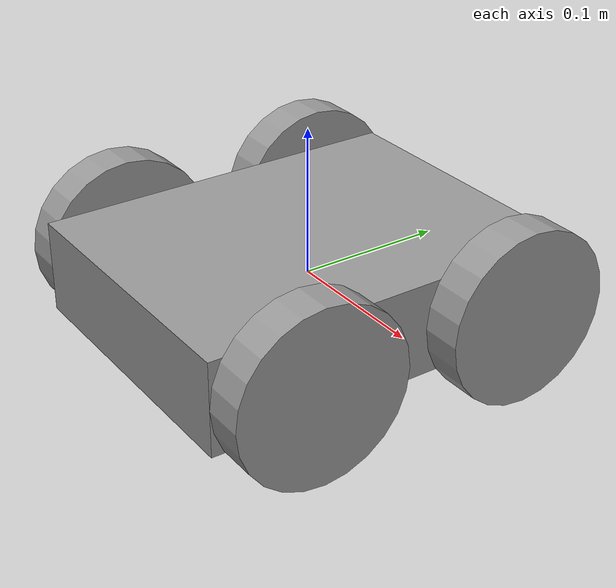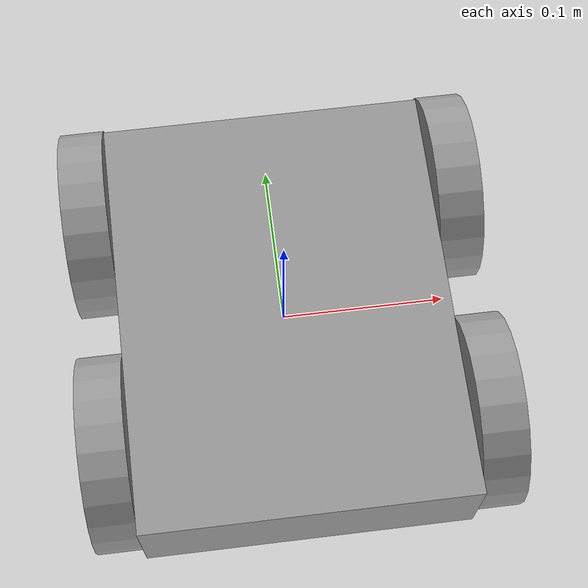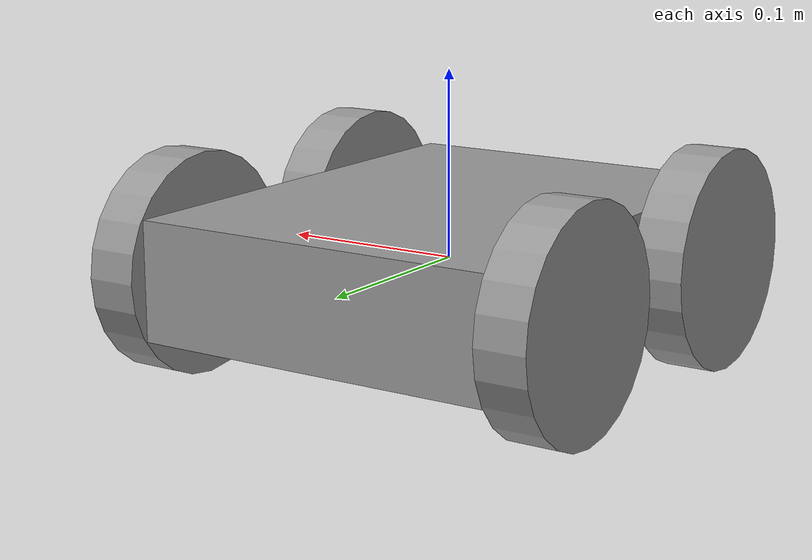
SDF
<?xml version='1.0'?>
<sdf version='1.7'>
  <model name='myrobot'>
    <link name='link_0'>
      <inertial>
        <mass>0.818395</mass>
        <inertia>
          <ixx>0.00486965</ixx>
          <ixy>0</ixy>
          <ixz>0</ixz>
          <iyy>0.00299924</iyy>
          <iyz>0</iyz>
          <izz>0.00732635</izz>
        </inertia>
        <pose>0 0 0 0 -0 0</pose>
      </inertial>
      <pose>6e-05 -0.004072 1e-06 0 -0 0</pose>
      <gravity>1</gravity>
      <self_collide>0</self_collide>
      <kinematic>0</kinematic>
      <enable_wind>0</enable_wind>
      <visual name='visual'>
        <pose>0 0 0 0 -0 0</pose>
        <geometry>
          <box>
            <size>0.2 0.259664 0.063068</size>
          </box>
        </geometry>
        <material>
          <lighting>1</lighting>
          <script>
            <uri>file://media/materials/scripts/gazebo.material</uri>
            <name>Gazebo/Grey</name>
          </script>
          <shader type='pixel'>
            <normal_map>__default__</normal_map>
          </shader>
          <ambient>0.3 0.3 0.3 1</ambient>
          <diffuse>0.7 0.7 0.7 1</diffuse>
          <specular>0.01 0.01 0.01 1</specular>
          <emissive>0 0 0 1</emissive>
        </material>
        <transparency>0</transparency>
        <cast_shadows>1</cast_shadows>
      </visual>
      <collision name='collision'>
        <laser_retro>0</laser_retro>
        <max_contacts>10</max_contacts>
        <pose>0 0 0 0 -0 0</pose>
        <geometry>
          <box>
            <size>0.2 0.259664 0.063068</size>
          </box>
        </geometry>
        <surface>
          <friction>
            <ode>
              <mu>1</mu>
              <mu2>1</mu2>
              <fdir1>0 0 0</fdir1>
              <slip1>0</slip1>
              <slip2>0</slip2>
            </ode>
            <torsional>
              <coefficient>1</coefficient>
              <patch_radius>0</patch_radius>
              <surface_radius>0</surface_radius>
              <use_patch_radius>1</use_patch_radius>
              <ode>
                <slip>0</slip>
              </ode>
            </torsional>
          </friction>
          <bounce>
            <restitution_coefficient>0</restitution_coefficient>
            <threshold>1e+06</threshold>
          </bounce>
          <contact>
            <collide_without_contact>0</collide_without_contact>
            <collide_without_contact_bitmask>1</collide_without_contact_bitmask>
            <collide_bitmask>1</collide_bitmask>
            <ode>
              <soft_cfm>0</soft_cfm>
              <soft_erp>0.2</soft_erp>
              <kp>1e+13</kp>
              <kd>1</kd>
              <max_vel>0.01</max_vel>
              <min_depth>0</min_depth>
            </ode>
            <bullet>
              <split_impulse>1</split_impulse>
              <split_impulse_penetration_threshold>-0.01</split_impulse_penetration_threshold>
              <soft_cfm>0</soft_cfm>
              <soft_erp>0.2</soft_erp>
              <kp>1e+13</kp>
              <kd>1</kd>
            </bullet>
          </contact>
        </surface>
      </collision>
    </link>
    <link name='link_3'>
      <inertial>
        <mass>0.00037985</mass>
        <inertia>
          <ixx>3.5e-07</ixx>
          <ixy>0</ixy>
          <ixz>0</ixz>
          <iyy>3.5e-07</iyy>
          <iyz>0</iyz>
          <izz>6.6e-07</izz>
        </inertia>
        <pose>0 0 0 0 -0 0</pose>
      </inertial>
      <pose>-0.113542 -0.074896 0 3.13991 -1.57079 -3.13992</pose>
      <gravity>1</gravity>
      <self_collide>0</self_collide>
      <kinematic>0</kinematic>
      <enable_wind>0</enable_wind>
      <visual name='visual'>
        <pose>0 0 0 0 -0 0</pose>
        <geometry>
          <cylinder>
            <radius>0.0590043</radius>
            <length>0.0272053</length>
          </cylinder>
        </geometry>
        <material>
          <lighting>1</lighting>
          <script>
            <uri>file://media/materials/scripts/gazebo.material</uri>
            <name>Gazebo/Grey</name>
          </script>
          <shader type='pixel'>
            <normal_map>__default__</normal_map>
          </shader>
          <ambient>0.3 0.3 0.3 1</ambient>
          <diffuse>0.7 0.7 0.7 1</diffuse>
          <specular>0.01 0.01 0.01 1</specular>
          <emissive>0 0 0 1</emissive>
        </material>
        <transparency>0</transparency>
        <cast_shadows>1</cast_shadows>
      </visual>
      <collision name='collision'>
        <laser_retro>0</laser_retro>
        <max_contacts>10</max_contacts>
        <pose>0 0 0 0 -0 0</pose>
        <geometry>
          <cylinder>
            <radius>0.059004</radius>
            <length>0.027205</length>
          </cylinder>
        </geometry>
        <surface>
          <friction>
            <ode>
              <mu>1</mu>
              <mu2>1</mu2>
              <fdir1>0 0 0</fdir1>
              <slip1>0</slip1>
              <slip2>0</slip2>
            </ode>
            <torsional>
              <coefficient>1</coefficient>
              <patch_radius>0</patch_radius>
              <surface_radius>0</surface_radius>
              <use_patch_radius>1</use_patch_radius>
              <ode>
                <slip>0</slip>
              </ode>
            </torsional>
          </friction>
          <bounce>
            <restitution_coefficient>0</restitution_coefficient>
            <threshold>1e+06</threshold>
          </bounce>
          <contact>
            <collide_without_contact>0</collide_without_contact>
            <collide_without_contact_bitmask>1</collide_without_contact_bitmask>
            <collide_bitmask>1</collide_bitmask>
            <ode>
              <soft_cfm>0</soft_cfm>
              <soft_erp>0.2</soft_erp>
              <kp>1e+13</kp>
              <kd>1</kd>
              <max_vel>0.01</max_vel>
              <min_depth>0</min_depth>
            </ode>
            <bullet>
              <split_impulse>1</split_impulse>
              <split_impulse_penetration_threshold>-0.01</split_impulse_penetration_threshold>
              <soft_cfm>0</soft_cfm>
              <soft_erp>0.2</soft_erp>
              <kp>1e+13</kp>
              <kd>1</kd>
            </bullet>
          </contact>
        </surface>
      </collision>
    </link>
    <link name='link_3_clone'>
      <inertial>
        <mass>0.00037985</mass>
        <inertia>
          <ixx>3.5e-07</ixx>
          <ixy>0</ixy>
          <ixz>0</ixz>
          <iyy>3.5e-07</iyy>
          <iyz>0</iyz>
          <izz>6.6e-07</izz>
        </inertia>
        <pose>0 0 0 0 -0 0</pose>
      </inertial>
      <pose>-0.11354 0.076928 0 3.13991 -1.57079 -3.13992</pose>
      <gravity>1</gravity>
      <self_collide>0</self_collide>
      <kinematic>0</kinematic>
      <enable_wind>0</enable_wind>
      <visual name='visual'>
        <pose>0 0 0 0 -0 0</pose>
        <geometry>
          <cylinder>
            <radius>0.0590043</radius>
            <length>0.0272053</length>
          </cylinder>
        </geometry>
        <material>
          <lighting>1</lighting>
          <script>
            <uri>file://media/materials/scripts/gazebo.material</uri>
            <name>Gazebo/Grey</name>
          </script>
          <shader type='pixel'>
            <normal_map>__default__</normal_map>
          </shader>
          <ambient>0.3 0.3 0.3 1</ambient>
          <diffuse>0.7 0.7 0.7 1</diffuse>
          <specular>0.01 0.01 0.01 1</specular>
          <emissive>0 0 0 1</emissive>
        </material>
        <transparency>0</transparency>
        <cast_shadows>1</cast_shadows>
      </visual>
      <collision name='collision'>
        <laser_retro>0</laser_retro>
        <max_contacts>10</max_contacts>
        <pose>0 0 0 0 -0 0</pose>
        <geometry>
          <cylinder>
            <radius>0.059004</radius>
            <length>0.027205</length>
          </cylinder>
        </geometry>
        <surface>
          <friction>
            <ode>
              <mu>1</mu>
              <mu2>1</mu2>
              <fdir1>0 0 0</fdir1>
              <slip1>0</slip1>
              <slip2>0</slip2>
            </ode>
            <torsional>
              <coefficient>1</coefficient>
              <patch_radius>0</patch_radius>
              <surface_radius>0</surface_radius>
              <use_patch_radius>1</use_patch_radius>
              <ode>
                <slip>0</slip>
              </ode>
            </torsional>
          </friction>
          <bounce>
            <restitution_coefficient>0</restitution_coefficient>
            <threshold>1e+06</threshold>
          </bounce>
          <contact>
            <collide_without_contact>0</collide_without_contact>
            <collide_without_contact_bitmask>1</collide_without_contact_bitmask>
            <collide_bitmask>1</collide_bitmask>
            <ode>
              <soft_cfm>0</soft_cfm>
              <soft_erp>0.2</soft_erp>
              <kp>1e+13</kp>
              <kd>1</kd>
              <max_vel>0.01</max_vel>
              <min_depth>0</min_depth>
            </ode>
            <bullet>
              <split_impulse>1</split_impulse>
              <split_impulse_penetration_threshold>-0.01</split_impulse_penetration_threshold>
              <soft_cfm>0</soft_cfm>
              <soft_erp>0.2</soft_erp>
              <kp>1e+13</kp>
              <kd>1</kd>
            </bullet>
          </contact>
        </surface>
      </collision>
    </link>
    <link name='link_3_clone_clone'>
      <inertial>
        <mass>0.00037985</mass>
        <inertia>
          <ixx>3.5e-07</ixx>
          <ixy>0</ixy>
          <ixz>0</ixz>
          <iyy>3.5e-07</iyy>
          <iyz>0</iyz>
          <izz>6.6e-07</izz>
        </inertia>
        <pose>0 0 0 0 -0 0</pose>
      </inertial>
      <pose>0.11351 -0.074902 0 3.13991 -1.57079 -3.13992</pose>
      <gravity>1</gravity>
      <self_collide>0</self_collide>
      <kinematic>0</kinematic>
      <enable_wind>0</enable_wind>
      <visual name='visual'>
        <pose>0 0 0 0 -0 0</pose>
        <geometry>
          <cylinder>
            <radius>0.0590043</radius>
            <length>0.0272053</length>
          </cylinder>
        </geometry>
        <material>
          <lighting>1</lighting>
          <script>
            <uri>file://media/materials/scripts/gazebo.material</uri>
            <name>Gazebo/Grey</name>
          </script>
          <shader type='pixel'>
            <normal_map>__default__</normal_map>
          </shader>
          <ambient>0.3 0.3 0.3 1</ambient>
          <diffuse>0.7 0.7 0.7 1</diffuse>
          <specular>0.01 0.01 0.01 1</specular>
          <emissive>0 0 0 1</emissive>
        </material>
        <transparency>0</transparency>
        <cast_shadows>1</cast_shadows>
      </visual>
      <collision name='collision'>
        <laser_retro>0</laser_retro>
        <max_contacts>10</max_contacts>
        <pose>0 0 0 0 -0 0</pose>
        <geometry>
          <cylinder>
            <radius>0.059004</radius>
            <length>0.027205</length>
          </cylinder>
        </geometry>
        <surface>
          <friction>
            <ode>
              <mu>1</mu>
              <mu2>1</mu2>
              <fdir1>0 0 0</fdir1>
              <slip1>0</slip1>
              <slip2>0</slip2>
            </ode>
            <torsional>
              <coefficient>1</coefficient>
              <patch_radius>0</patch_radius>
              <surface_radius>0</surface_radius>
              <use_patch_radius>1</use_patch_radius>
              <ode>
                <slip>0</slip>
              </ode>
            </torsional>
          </friction>
          <bounce>
            <restitution_coefficient>0</restitution_coefficient>
            <threshold>1e+06</threshold>
          </bounce>
          <contact>
            <collide_without_contact>0</collide_without_contact>
            <collide_without_contact_bitmask>1</collide_without_contact_bitmask>
            <collide_bitmask>1</collide_bitmask>
            <ode>
              <soft_cfm>0</soft_cfm>
              <soft_erp>0.2</soft_erp>
              <kp>1e+13</kp>
              <kd>1</kd>
              <max_vel>0.01</max_vel>
              <min_depth>0</min_depth>
            </ode>
            <bullet>
              <split_impulse>1</split_impulse>
              <split_impulse_penetration_threshold>-0.01</split_impulse_penetration_threshold>
              <soft_cfm>0</soft_cfm>
              <soft_erp>0.2</soft_erp>
              <kp>1e+13</kp>
              <kd>1</kd>
            </bullet>
          </contact>
        </surface>
      </collision>
    </link>
    <link name='link_3_clone_clone_0'>
      <inertial>
        <mass>0.00037985</mass>
        <inertia>
          <ixx>3.5e-07</ixx>
          <ixy>0</ixy>
          <ixz>0</ixz>
          <iyy>3.5e-07</iyy>
          <iyz>0</iyz>
          <izz>6.6e-07</izz>
        </inertia>
        <pose>0 0 0 0 -0 0</pose>
      </inertial>
      <pose>0.11351 0.076928 -0 3.13991 -1.57079 -3.13992</pose>
      <gravity>1</gravity>
      <self_collide>0</self_collide>
      <kinematic>0</kinematic>
      <enable_wind>0</enable_wind>
      <visual name='visual'>
        <pose>0 0 0 0 -0 0</pose>
        <geometry>
          <cylinder>
            <radius>0.0590043</radius>
            <length>0.0272053</length>
          </cylinder>
        </geometry>
        <material>
          <lighting>1</lighting>
          <script>
            <uri>file://media/materials/scripts/gazebo.material</uri>
            <name>Gazebo/Grey</name>
          </script>
          <shader type='pixel'>
            <normal_map>__default__</normal_map>
          </shader>
          <ambient>0.3 0.3 0.3 1</ambient>
          <diffuse>0.7 0.7 0.7 1</diffuse>
          <specular>0.01 0.01 0.01 1</specular>
          <emissive>0 0 0 1</emissive>
        </material>
        <transparency>0</transparency>
        <cast_shadows>1</cast_shadows>
      </visual>
      <collision name='collision'>
        <laser_retro>0</laser_retro>
        <max_contacts>10</max_contacts>
        <pose>0 0 0 0 -0 0</pose>
        <geometry>
          <cylinder>
            <radius>0.059004</radius>
            <length>0.027205</length>
          </cylinder>
        </geometry>
        <surface>
          <friction>
            <ode>
              <mu>1</mu>
              <mu2>1</mu2>
              <fdir1>0 0 0</fdir1>
              <slip1>0</slip1>
              <slip2>0</slip2>
            </ode>
            <torsional>
              <coefficient>1</coefficient>
              <patch_radius>0</patch_radius>
              <surface_radius>0</surface_radius>
              <use_patch_radius>1</use_patch_radius>
              <ode>
                <slip>0</slip>
              </ode>
            </torsional>
          </friction>
          <bounce>
            <restitution_coefficient>0</restitution_coefficient>
            <threshold>1e+06</threshold>
          </bounce>
          <contact>
            <collide_without_contact>0</collide_without_contact>
            <collide_without_contact_bitmask>1</collide_without_contact_bitmask>
            <collide_bitmask>1</collide_bitmask>
            <ode>
              <soft_cfm>0</soft_cfm>
              <soft_erp>0.2</soft_erp>
              <kp>1e+13</kp>
              <kd>1</kd>
              <max_vel>0.01</max_vel>
              <min_depth>0</min_depth>
            </ode>
            <bullet>
              <split_impulse>1</split_impulse>
              <split_impulse_penetration_threshold>-0.01</split_impulse_penetration_threshold>
              <soft_cfm>0</soft_cfm>
              <soft_erp>0.2</soft_erp>
              <kp>1e+13</kp>
              <kd>1</kd>
            </bullet>
          </contact>
        </surface>
      </collision>
    </link>
    <joint name='link_0_JOINT_3' type='revolute'>
      <parent>link_0</parent>
      <child>link_3</child>
      <pose>0 0 0 0 -0 0</pose>
      <axis>
        <xyz>0 0 1</xyz>
        <limit>
          <lower>-1.79769e+308</lower>
          <upper>1.79769e+308</upper>
          <effort>-1</effort>
          <velocity>-1</velocity>
        </limit>
        <dynamics>
          <spring_reference>0</spring_reference>
          <spring_stiffness>0</spring_stiffness>
          <damping>0</damping>
          <friction>0</friction>
        </dynamics>
      </axis>
      <physics>
        <ode>
          <limit>
            <cfm>0</cfm>
            <erp>0.2</erp>
          </limit>
          <suspension>
            <cfm>0</cfm>
            <erp>0.2</erp>
          </suspension>
        </ode>
      </physics>
    </joint>
    <joint name='link_0_JOINT_5' type='revolute'>
      <parent>link_0</parent>
      <child>link_3_clone</child>
      <pose>0 0 0 0 -0 0</pose>
      <axis>
        <xyz>0 0 1</xyz>
        <limit>
          <lower>-1.79769e+308</lower>
          <upper>1.79769e+308</upper>
          <effort>-1</effort>
          <velocity>-1</velocity>
        </limit>
        <dynamics>
          <spring_reference>0</spring_reference>
          <spring_stiffness>0</spring_stiffness>
          <damping>0</damping>
          <friction>0</friction>
        </dynamics>
      </axis>
      <physics>
        <ode>
          <limit>
            <cfm>0</cfm>
            <erp>0.2</erp>
          </limit>
          <suspension>
            <cfm>0</cfm>
            <erp>0.2</erp>
          </suspension>
        </ode>
      </physics>
    </joint>
    <joint name='link_0_JOINT_9' type='revolute'>
      <parent>link_0</parent>
      <child>link_3_clone_clone_0</child>
      <pose>0 0 0 0 -0 0</pose>
      <axis>
        <xyz>-0 -0 -1</xyz>
        <limit>
          <lower>-1.79769e+308</lower>
          <upper>1.79769e+308</upper>
          <effort>-1</effort>
          <velocity>-1</velocity>
        </limit>
        <dynamics>
          <spring_reference>0</spring_reference>
          <spring_stiffness>0</spring_stiffness>
          <damping>0</damping>
          <friction>0</friction>
        </dynamics>
      </axis>
      <physics>
        <ode>
          <limit>
            <cfm>0</cfm>
            <erp>0.2</erp>
          </limit>
          <suspension>
            <cfm>0</cfm>
            <erp>0.2</erp>
          </suspension>
        </ode>
      </physics>
    </joint>
    <joint name='link_3_clone_clone_JOINT_10' type='revolute'>
      <parent>link_3_clone_clone</parent>
      <child>link_0</child>
      <pose>0 0 0 0 -0 0</pose>
      <axis>
        <xyz>1 0 0</xyz>
        <limit>
          <lower>-1.79769e+308</lower>
          <upper>1.79769e+308</upper>
          <effort>-1</effort>
          <velocity>-1</velocity>
        </limit>
        <dynamics>
          <spring_reference>0</spring_reference>
          <spring_stiffness>0</spring_stiffness>
          <damping>0</damping>
          <friction>0</friction>
        </dynamics>
      </axis>
      <physics>
        <ode>
          <limit>
            <cfm>0</cfm>
            <erp>0.2</erp>
          </limit>
          <suspension>
            <cfm>0</cfm>
            <erp>0.2</erp>
          </suspension>
        </ode>
      </physics>
    </joint>
    <static>0</static>
    <allow_auto_disable>1</allow_auto_disable>
  </model>
</sdf>
